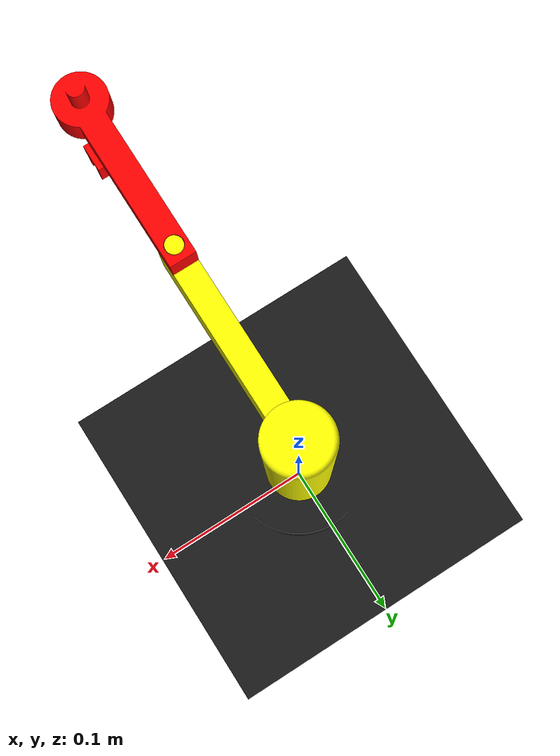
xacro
<?xml version="1.0"?>
<robot name="robot_arm" xmlns:xacro="http://www.ros.org/wiki/xacro">

    <xacro:include filename="$(find robot_arm)/urdf/materials.xacro" />
    <xacro:include filename="$(find robot_arm)/urdf/robot_arm.trans" />
    <xacro:include filename="$(find robot_arm)/urdf/ros2_control.xacro" />

    <link name="world_link">
        <!-- This is a virtual link with no geometry -->
    </link>

    <link name="base_link">
        <inertial>
            <origin xyz="0.0 2.0778993540635682e-17 0.011722603990870939" rpy="0 0 0" />
            <mass value="2.363575203952618" />
            <inertia ixx="0.007455" iyy="0.007455" izz="0.014604" ixy="0.0" iyz="0.0" ixz="0.0" />
        </inertial>
        <visual>
            <origin xyz="0 0 0" rpy="0 0 0" />
            <geometry>
                <mesh filename="file://$(find robot_arm)/meshes/base_link.stl"
                    scale="0.001 0.001 0.001" />
            </geometry>
            <material name="black" />
        </visual>
        <collision>
            <origin xyz="0 0 0" rpy="0 0 0" />
            <geometry>
                <mesh filename="file://$(find robot_arm)/meshes/base_link.stl"
                    scale="0.001 0.001 0.001" />
            </geometry>
        </collision>
    </link>

    <link name="shoulder_link_1">
        <inertial>
            <origin xyz="1.104480000447626e-05 -0.014617812901259835 0.08500351021704572"
                rpy="0 0 0" />
            <mass value="1.8523610529051973" />
            <inertia ixx="0.005594" iyy="0.003696" izz="0.002207" ixy="1e-06" iyz="0.001088"
                ixz="-1e-06" />
        </inertial>
        <visual>
            <origin xyz="-0.0 -0.0 -0.02" rpy="0 0 0" />
            <geometry>
                <mesh filename="file://$(find robot_arm)/meshes/shoulder_link_1.stl"
                    scale="0.001 0.001 0.001" />
            </geometry>
            <material name="yellow" />
        </visual>
        <collision>
            <origin xyz="-0.0 -0.0 -0.02" rpy="0 0 0" />
            <geometry>
                <mesh filename="file://$(find robot_arm)/meshes/shoulder_link_1.stl"
                    scale="0.001 0.001 0.001" />
            </geometry>
        </collision>
    </link>

    <link name="elbow_link_1">
        <inertial>
            <origin xyz="0.00014621461304581678 -0.06483277607494016 -0.01590018911418939"
                rpy="0 0 0" />
            <mass value="0.27915472131171726" />
            <inertia ixx="0.000413" iyy="0.000133" izz="0.000297" ixy="-0.0" iyz="-6.4e-05"
                ixz="-0.0" />
        </inertial>
        <visual>
            <origin xyz="-1.7e-05 0.114965 -0.174288" rpy="0 0 0" />
            <geometry>
                <mesh filename="file://$(find robot_arm)/meshes/elbow_link_1.stl"
                    scale="0.001 0.001 0.001" />
            </geometry>
            <material name="ash" />
        </visual>
        <collision>
            <origin xyz="-1.7e-05 0.114965 -0.174288" rpy="0 0 0" />
            <geometry>
                <mesh filename="file://$(find robot_arm)/meshes/elbow_link_1.stl"
                    scale="0.001 0.001 0.001" />
            </geometry>
        </collision>
    </link>

    <joint name="Revolute_3" type="revolute">
        <origin xyz="0.0 0.0 0.02" rpy="0 0 0" />
        <parent link="base_link" />
        <child link="shoulder_link_1" />
        <axis xyz="0.0 0.0 -1.0" />
        <limit upper="3.14" lower="-3.14" effort="100" velocity="100" />
    </joint>

    <joint name="Revolute_4" type="revolute">
        <origin xyz="1.7e-05 -0.114965 0.154288" rpy="0 0   0" />
        <parent link="shoulder_link_1" />
        <child link="elbow_link_1" />
        <axis xyz="0.0 0.0 1.0" />
        <limit upper="2.443461" lower="-2.443461" effort="100" velocity="100" />
    </joint>

    <joint name="world_to_base" type="fixed">
        <parent link="world_link" />
        <child link="base_link" />
        <origin xyz="0 0 0" rpy="0 0 0" />
    </joint>
</robot>

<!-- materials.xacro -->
<robot name="robot_arm" xmlns:xacro="http://www.ros.org/wiki/xacro" >

  <!-- Black color -->
  <material name="black">
    <color rgba="0.1 0.1 0.1 1.0"/>
  </material>

  <!-- Yellow color -->
  <material name="yellow">
    <color rgba="1.0 1.0 0.0 1.0"/>
  </material>

  <!-- Ash color -->
  <material name="ash">
    <color rgba="1.0 0.0 0.0 1.0"/>
  </material>

</robot>

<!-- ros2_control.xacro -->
<robot xmlns:xacro="http://www.ros.org/wiki/xacro">

    <ros2control name="IgnitionSystem" type="system">
        <hardware>
            <plugin>ign_ros2_control/IgnitionSystem</plugin>
        </hardware>
        <joint name="Revolute_3">
            <command_interface name="position">
                <param name='min'>-3.14</param>
                <param name='max'>3.14</param>
            </command_interface>
            <state_interface name="position" />
            <state_interface name="velocity" />
            <state_interface name="effort" />
        </joint>
        <joint name="Revolute_4">
            <command_interface name="position">
                <param name="min">-2.443</param>
                <param name="max">2.443</param>
            </command_interface>
            <state_interface name="position" />
            <state_interface name="velocity" />
            <state_interface name="effort" />
        </joint>
    </ros2control>

    <gazebo>
        <plugin filename="ign_ros2_control-system"
            name="ign_ros2_control::IgnitionROS2ControlPlugin">
            <robot_param>robot_description</robot_param>
            <parameters>$(find robot_arm)/config/controller.yaml</parameters>
            <controller_manager_name>controller_manager</controller_manager_name>
            <ros>
                <namespace>/robot_arm</namespace>
                <remapping>/robot_description:=/robot_description_full</remapping>
            </ros>
        </plugin>
    </gazebo>

</robot>
